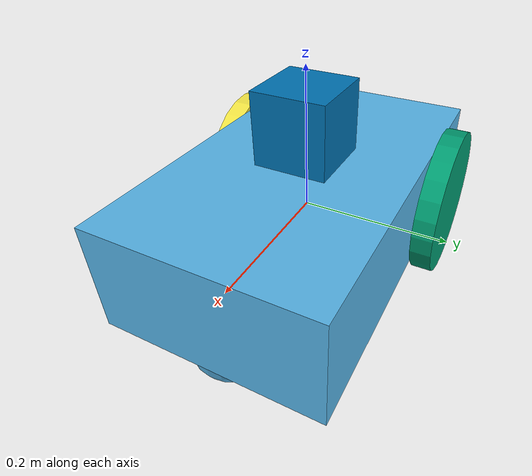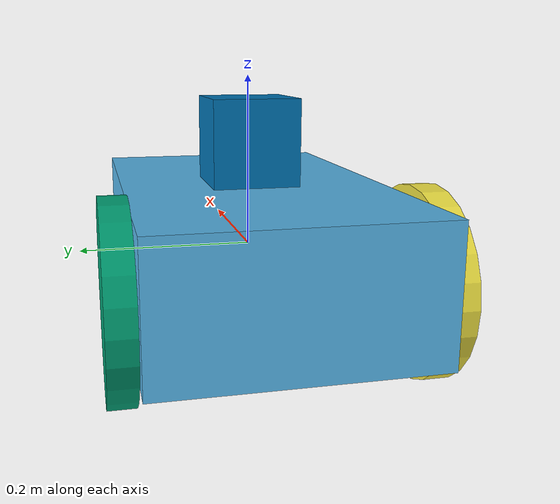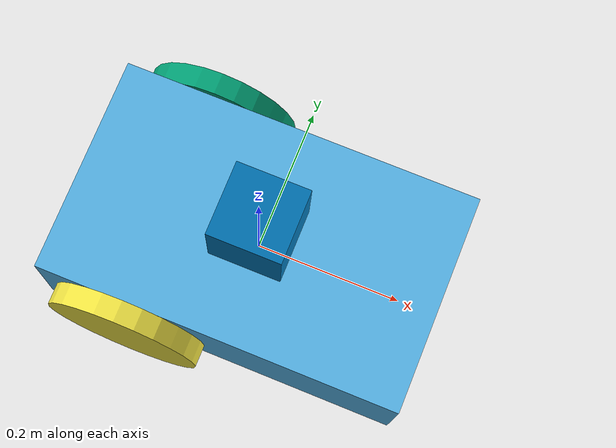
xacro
<?xml version='1.0'?>

<!-- choose a name space and start xacro -->
<robot name="diff_drive"
    xmlns:xacro="http://www.ros.org/wiki/xacro">

    <!-- Start by including all required xacro files which hold the macros -->
    <xacro:include filename="$(find dviratis_robotas)/diff_drive/diff_drive.gazebo" />
    <xacro:include filename="$(find dviratis_robotas)/diff_drive/materials.xacro" />
    <xacro:include filename="$(find dviratis_robotas)/diff_drive/macros.xacro" />
    <xacro:include filename="$(find dviratis_robotas)/diff_drive/parameter.xacro" />

    <!-- Create a dummy link as base link -->
    <link name='base_link'>
        <pose>0 0 0 0 0 0</pose>
    </link>
    <joint type="fixed" name="base_link_to_chassis">
        <child link="chassis_link"/>
        <parent link="base_link"/>
    </joint>

    <!-- Define the chassis of the differential drive robot, which is our base -->
    <link name='chassis_link'>
        <pose>0 0 0 0 0 0</pose>
        <!-- Define inertial system for the chassis -->
        <inertial>
            <mass value="${m_chassis}"/>
            <xacro:box_inertia m="${m_chassis}" x="${x_chassis}" y="${y_chassis}" z="${z_chassis}"/>
        </inertial>
        <!-- Define collision sorrounding box -->
        <collision name='collision'>
            <origin xyz="0 0 0" rpy=" 0 0 0"/>
            <geometry>
                <box size="${x_chassis} ${y_chassis} ${z_chassis}"/>
            </geometry>
        </collision>
        <!-- Define visualization structure -->
        <visual name='base_link_visual'>
            <origin xyz="0 0 0" rpy=" 0 0 0"/>
            <geometry>
                <box size="${x_chassis} ${y_chassis} ${z_chassis}"/>
            </geometry>
        </visual>

        <!-- Add the caster wheel! Here we simply assume complete slippage, thus we do not require that it rotates! -->
        <collision name='caster_collision'>
            <origin xyz="${-(r_wheel/2)+x_chassis/2} 0 ${-z_chassis/2}" rpy=" 0 0 0"/>
            <geometry>
                <sphere radius="${r_wheel/2}"/>
            </geometry>
            <surface>
                <friction>
                    <ode>
                        <mu>0</mu>
                        <mu2>0</mu2>
                        <slip1>1.0</slip1>
                        <slip2>1.0</slip2>
                    </ode>
                </friction>
            </surface>
        </collision>
        <visual name='caster_visual'>
            <origin xyz="${-(r_wheel/2)+x_chassis/2} 0 ${-z_chassis/2}" rpy=" 0 0 0"/>
            <geometry>
                <sphere radius="${r_wheel/2}"/>
            </geometry>
        </visual>
    </link>

    <!-- Add the wheels for the robot -->
    <link name="left_wheel">
        <collision name="collision">
            <origin xyz="0 0 0" rpy="0 1.5707 1.5707"/>
            <geometry>
                <cylinder radius="${r_wheel}" length="${h_wheel}"/>
            </geometry>
            <surface>
                <friction>
                    <ode>
                        <mu>1.0</mu>
                        <mu2>1.0</mu2>
                        <slip1>0.0</slip1>
                        <slip2>0.0</slip2>
                    </ode>
                </friction>
            </surface>
        </collision>
        <visual name="left_wheel_visual">
            <origin xyz="0 0 0" rpy="0 1.5707 1.5707"/>
            <geometry>
                <cylinder radius="${r_wheel}" length="${h_wheel}"/>
            </geometry>
        </visual>
        <inertial>
            <origin xyz="0 0 0" rpy="0 1.5707 1.5707"/>
            <mass value="${m_wheel}"/>
            <cylinder_inertia m="${m_wheel}" r="${r_wheel}" h="${h_wheel}"/>
            <xacro:cylinder_inertia m="${m_wheel}" r="${r_wheel}" h="${h_wheel}"/>
        </inertial>
    </link>

    <link name="right_wheel">
        <collision name="collision">
            <origin xyz="0 0 0" rpy="0 1.5707 1.5707"/>
            <geometry>
                <cylinder radius="${r_wheel}" length="${h_wheel}"/>
            </geometry>
            <surface>
                <friction>
                    <ode>
                        <mu>1.0</mu>
                        <mu2>1.0</mu2>
                        <slip1>0.0</slip1>
                        <slip2>0.0</slip2>
                    </ode>
                </friction>
            </surface>
        </collision>
        <visual name="right_wheel_visual">
            <origin xyz="0 0 0" rpy="0 1.5707 1.5707"/>
            <geometry>
                <cylinder radius="${r_wheel}" length="${h_wheel}"/>
            </geometry>
        </visual>
        <inertial>
            <origin xyz="0 0 0" rpy="0 1.5707 1.5707"/>
            <mass value="${m_wheel}"/>
            <cylinder_inertia m="${m_wheel}" r="${r_wheel}" h="${h_wheel}"/>
            <xacro:cylinder_inertia m="${m_wheel}" r="${r_wheel}" h="${h_wheel}"/>
        </inertial>
    </link>

    <!-- Set joints for the wheels which can be controlled over ROS -->
    <joint type="continuous" name="left_wheel_hinge">
        <origin xyz="${-x_chassis/4} ${y_chassis/2+h_wheel/2} ${r_wheel/2-z_chassis/2}" rpy="0 0 0"/>
        <child link="left_wheel"/>
        <parent link="base_link"/>
        <axis xyz="0 1 0" rpy="0 0 0"/>
        <limit effort="100" velocity="100"/>
        <joint_properties damping="0.0" friction="0.0"/>
    </joint>
    <joint type="continuous" name="right_wheel_hinge">
        <origin xyz="${-x_chassis/4} ${-y_chassis/2-h_wheel/2} ${r_wheel/2-z_chassis/2}" rpy="0 0 0"/>
        <child link="right_wheel"/>
        <parent link="base_link"/>
        <axis xyz="0 1 0" rpy="0 0 0"/>
        <limit effort="100" velocity="100"/>
        <joint_properties damping="0.0" friction="0.0"/>
    </joint>

    <!-- Add a Hokuyo Laser -->
    <link name="laser_link">
        <collision>
            <origin xyz="0 0 0" rpy="0 0 0"/>
            <geometry>
                <box size="${x_hokuyo} ${y_hokuyo} ${z_hokuyo}"/>
            </geometry>
        </collision>
        <visual>
            <origin xyz="0 0 0" rpy="0 0 0"/>
            <geometry>
                <box size="${x_hokuyo} ${y_hokuyo} ${z_hokuyo}"/>
            </geometry>
        </visual>
        <inertial>
            <mass value="1e-5" />
            <origin xyz="0 0 0" rpy="0 0 0"/>
            <inertia ixx="1e-6" ixy="0" ixz="0" iyy="1e-6" iyz="0" izz="1e-6" />
        </inertial>
    </link>

    <joint name="hokuyo_joint" type="fixed">
        <axis xyz="0 1 0" />
        <origin xyz="0 0 ${z_chassis/2 + z_hokuyo/2}" rpy="0 0 0"/>
        <parent link="base_link"/>
        <child link="laser_link"/>
    </joint>

</robot>

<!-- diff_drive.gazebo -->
<robot xmlns:xacro="http://www.ros.org/wiki/xacro">
  <xacro:include filename="$(find dviratis_robotas)/diff_drive/parameter.xacro" />

  <!-- TODO: Add same update rates over parameter setting and define all parameters in config -->
  <!-- Differential Drive controller from Gazebo, TODO: Add noise by adapting the plugin -->
  <gazebo>
    <plugin name="differential_drive_controller" filename="libgazebo_ros_diff_drive.so">
      <alwaysOn>true</alwaysOn>
      <updateRate>20</updateRate>
      <leftJoint>left_wheel_hinge</leftJoint>
      <rightJoint>right_wheel_hinge</rightJoint>
      <wheelSeparation>${L_wheel*2}</wheelSeparation>
      <wheelDiameter>${r_wheel*2}</wheelDiameter>
      <torque>20</torque>
      <commandTopic>cmd_vel</commandTopic>
      <odometryTopic>odom</odometryTopic>
      <odometryFrame>odom_link</odometryFrame>
      <robotBaseFrame>base_link</robotBaseFrame>
      <legacyMode>false</legacyMode>
    </plugin>
  </gazebo>

  <!-- Hukuyo Laser Plugin -->
  <gazebo reference="laser_link">
    <sensor type="ray" name="head_hokuyo_sensor">
      <pose>0 0 0 0 0 0</pose>
      <visualize>true</visualize>
      <update_rate>20</update_rate>
      <ray>
        <scan>
          <horizontal>
            <samples>720</samples>
            <resolution>1</resolution>
            <min_angle>-1.570796</min_angle>
            <max_angle>1.570796</max_angle>
          </horizontal>
        </scan>
        <range>
          <min>0.10</min>
          <max>10.0</max>
          <resolution>0.01</resolution>
        </range>
        <noise>
          <type>gaussian</type>
          <mean>0.0</mean>
          <stddev>0.01</stddev>
        </noise>
      </ray>
      <plugin name="gazebo_ros_head_hokuyo_controller" filename="libgazebo_ros_laser.so">
        <topicName>/scan</topicName>
        <frameName>/laser_link</frameName>
      </plugin>
    </sensor>
  </gazebo>

  <!-- Paint the robot -->
  <gazebo reference="base_link">
    <material>Gazebo/Orange</material>
  </gazebo>
</robot>

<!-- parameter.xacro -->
<robot xmlns:xacro="http://www.ros.org/wiki/xacro">

    <!-- Define parameter for the differential drive robot -->
    <!-- Parameter for the chassis, size [m] and mass [kg] -->
    <xacro:property name="x_chassis" value="0.5" />
    <xacro:property name="y_chassis" value="0.3" />
    <xacro:property name="z_chassis" value="0.15" />
    <xacro:property name="m_chassis" value="10.0" />

    <!-- Parameter for the wheels, radius [m], height [m], mass [kg], torque [Nm], wheelbase [m] -->
    <xacro:property name="r_wheel" value="0.1075"/>
    <xacro:property name="h_wheel" value="0.03" />
    <xacro:property name="m_wheel" value="3.0" />
    <xacro:property name="torque_wheel" value="10" />
    <xacro:property name="L_wheel" value="0.1788" />

    <!-- Parameters for the Hukoyu Laser -->
    <xacro:property name="x_hokuyo" value="0.1" />
    <xacro:property name="y_hokuyo" value="0.1" />
    <xacro:property name="z_hokuyo" value="0.1" />

</robot>

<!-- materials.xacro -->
<robot xmlns:xacro="http://www.ros.org/wiki/xacro">

    <material name="orange">
        <color rgba="${255/255} ${108/255} ${10/255} 1.0"/>
    </material>

</robot>
